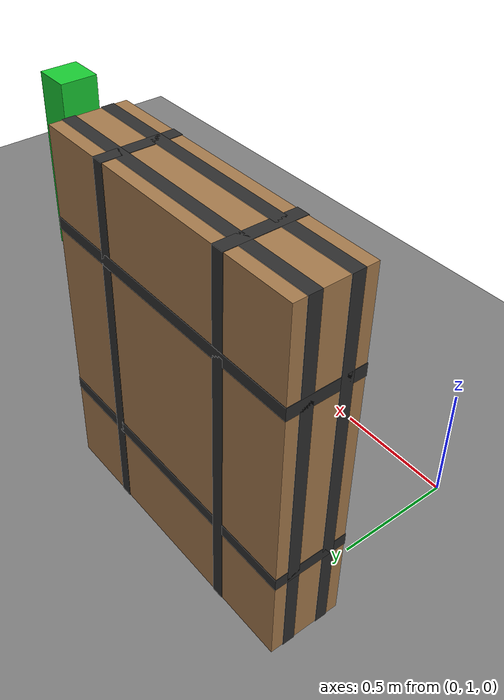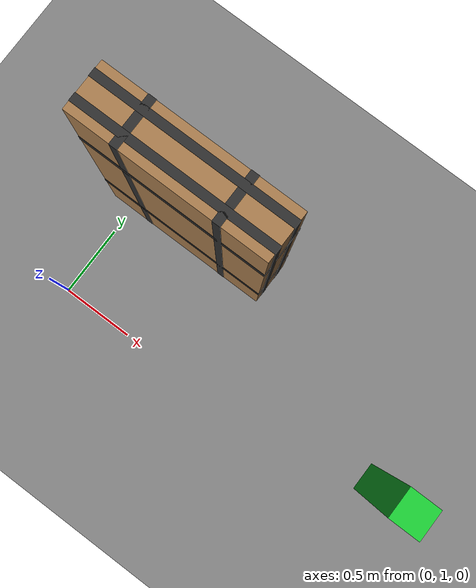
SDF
<sdf version="1.9">
 <world name="ecps295_wall_offset">
  <model name="ground_plane">
   <static>true</static>
   <link name="link">
    <collision name="collision">
     <geometry><plane><normal>0 0 1</normal><size>50 50</size></plane></geometry>
    </collision>
    <visual name="visual">
     <geometry><plane><normal>0 0 1</normal><size>50 50</size></plane></geometry>
     <material><ambient>0.5 0.5 0.5 1</ambient><diffuse>0.5 0.5 0.5 1</diffuse></material>
    </visual>
   </link>
  </model>
  <model name="wall">
   <static>true</static>
   <pose>0.45 1.85 0.75 0 0 0</pose>
   <link name="link">
    <collision name="c"><geometry><box><size>1.2 0.3 1.5</size></box></geometry></collision>
    <visual name="v">
     <geometry><box><size>1.2 0.3 1.5</size></box></geometry>
     <material><ambient>0.65 0.48 0.30 1</ambient><diffuse>0.65 0.48 0.30 1</diffuse></material>
    </visual>
    <visual name="tape_ring0">
     <pose>0.000 0.000 -0.375 0 0 0</pose>
     <geometry><box><size>1.204 0.304 0.050</size></box></geometry>
     <material><ambient>0.18 0.18 0.18 1</ambient><diffuse>0.18 0.18 0.18 1</diffuse></material>
    </visual>
    <visual name="tape_bx0">
     <pose>-0.300 0.000 0.000 0 0 0</pose>
     <geometry><box><size>0.050 0.304 1.504</size></box></geometry>
     <material><ambient>0.18 0.18 0.18 1</ambient><diffuse>0.18 0.18 0.18 1</diffuse></material>
    </visual>
    <visual name="tape_by0">
     <pose>0.000 -0.075 0.000 0 0 0</pose>
     <geometry><box><size>1.204 0.050 1.504</size></box></geometry>
     <material><ambient>0.18 0.18 0.18 1</ambient><diffuse>0.18 0.18 0.18 1</diffuse></material>
    </visual>
    <visual name="tape_ring1">
     <pose>0.000 0.000 0.375 0 0 0</pose>
     <geometry><box><size>1.204 0.304 0.050</size></box></geometry>
     <material><ambient>0.18 0.18 0.18 1</ambient><diffuse>0.18 0.18 0.18 1</diffuse></material>
    </visual>
    <visual name="tape_bx1">
     <pose>0.300 0.000 0.000 0 0 0</pose>
     <geometry><box><size>0.050 0.304 1.504</size></box></geometry>
     <material><ambient>0.18 0.18 0.18 1</ambient><diffuse>0.18 0.18 0.18 1</diffuse></material>
    </visual>
    <visual name="tape_by1">
     <pose>0.000 0.075 0.000 0 0 0</pose>
     <geometry><box><size>1.204 0.050 1.504</size></box></geometry>
     <material><ambient>0.18 0.18 0.18 1</ambient><diffuse>0.18 0.18 0.18 1</diffuse></material>
    </visual>
   </link>
  </model>
  <model name="marker_right">
   <static>true</static>
   <pose>2.4 1.2 0.5 0 0 0</pose>
   <link name="link">
    <collision name="c"><geometry><box><size>0.2 0.2 1.0</size></box></geometry></collision>
    <visual name="v">
     <geometry><box><size>0.2 0.2 1.0</size></box></geometry>
     <material><ambient>0.10 0.80 0.20 1</ambient><diffuse>0.10 0.80 0.20 1</diffuse></material>
    </visual>
   </link>
  </model>
 </world>
</sdf>
